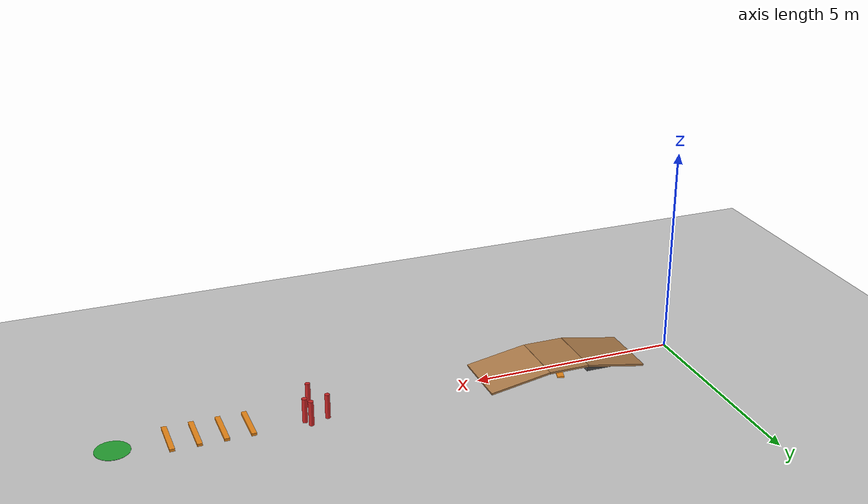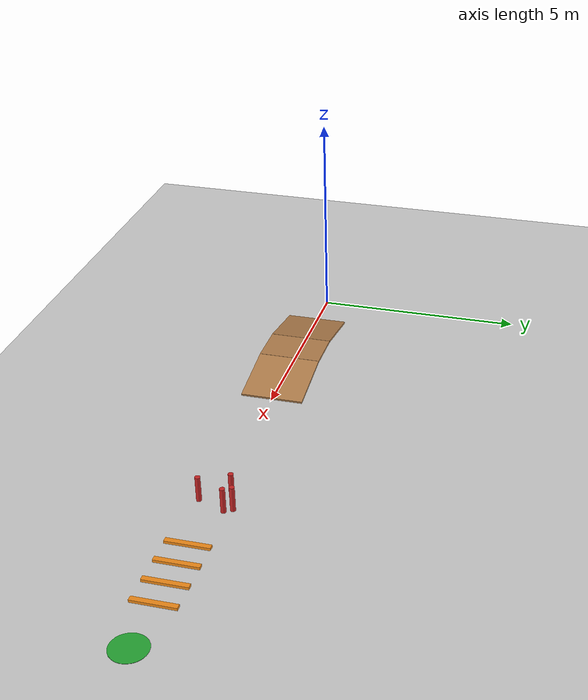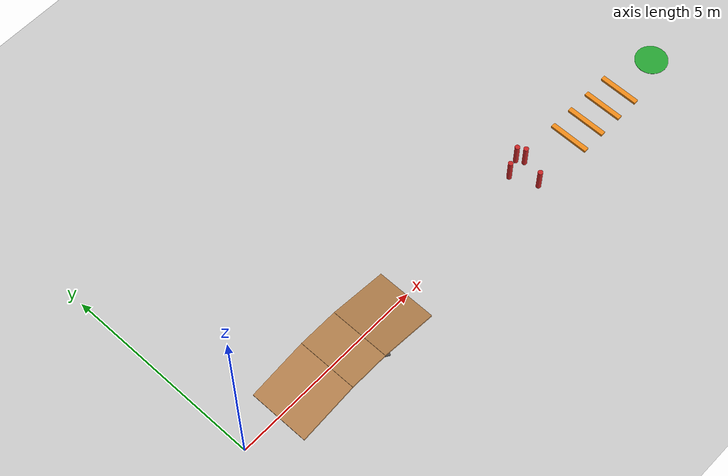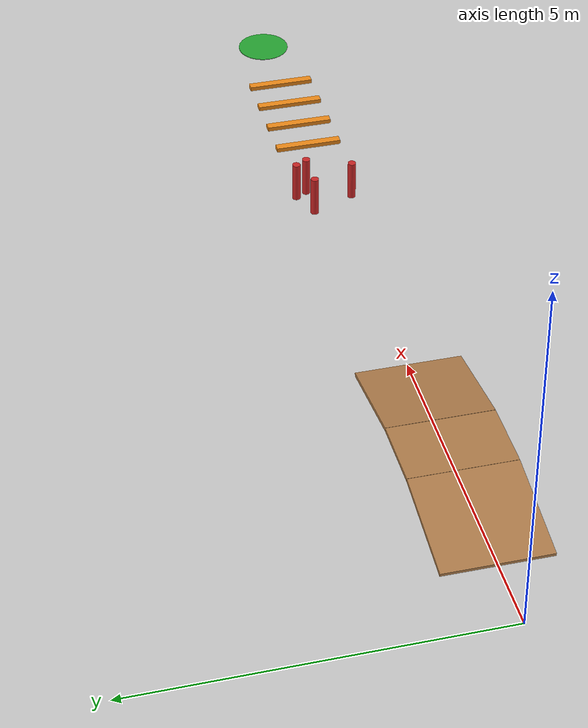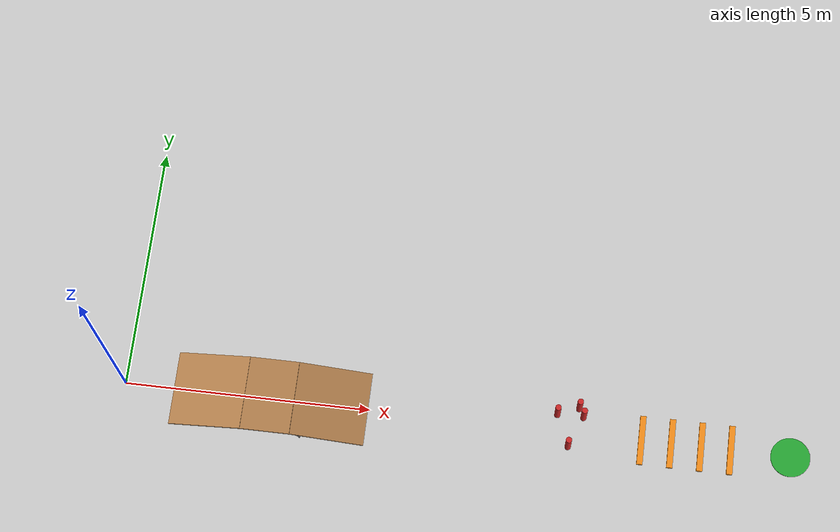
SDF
<?xml version="1.0" ?>
<!-- 由 omni_world.py 自动生成: scene=mixed seed=7 -->
<sdf version="1.5">
  <world name="mixed">
    <physics type="ode">
      <type>world</type>
      <max_step_size>0.001</max_step_size>
      <real_time_update_rate>1000</real_time_update_rate>
      <iters>500</iters>
    </physics>
    <include><uri>model://sun</uri></include>
    <include><uri>model://ground_plane</uri></include>
    <model name="mx_step_0_0">
      <static>true</static>
      <pose>1.500 0.000 0.033 0.0000 0.0000 0.0000</pose>
      <link name="link">
        <collision name="collision">
          <geometry><box><size>0.350 1.000 0.065</size></box></geometry>
          <surface><friction><ode><mu>1.0</mu><mu2>1.0</mu2></ode></friction></surface>
        </collision>
        <visual name="visual">
          <geometry><box><size>0.350 1.000 0.065</size></box></geometry>
          <material><script><uri>file://media/materials/scripts/gazebo.material</uri>
            <name>Gazebo/DarkGrey</name></script></material>
        </visual>
      </link>
    </model>
    <model name="mx_step_0_1">
      <static>true</static>
      <pose>1.850 0.000 0.065 0.0000 0.0000 0.0000</pose>
      <link name="link">
        <collision name="collision">
          <geometry><box><size>0.350 1.000 0.130</size></box></geometry>
          <surface><friction><ode><mu>1.0</mu><mu2>1.0</mu2></ode></friction></surface>
        </collision>
        <visual name="visual">
          <geometry><box><size>0.350 1.000 0.130</size></box></geometry>
          <material><script><uri>file://media/materials/scripts/gazebo.material</uri>
            <name>Gazebo/DarkGrey</name></script></material>
        </visual>
      </link>
    </model>
    <model name="mx_step_0_2">
      <static>true</static>
      <pose>2.200 0.000 0.098 0.0000 0.0000 0.0000</pose>
      <link name="link">
        <collision name="collision">
          <geometry><box><size>0.350 1.000 0.195</size></box></geometry>
          <surface><friction><ode><mu>1.0</mu><mu2>1.0</mu2></ode></friction></surface>
        </collision>
        <visual name="visual">
          <geometry><box><size>0.350 1.000 0.195</size></box></geometry>
          <material><script><uri>file://media/materials/scripts/gazebo.material</uri>
            <name>Gazebo/DarkGrey</name></script></material>
        </visual>
      </link>
    </model>
    <model name="mx_rough_1_0">
      <static>true</static>
      <pose>3.072 0.450 0.017 0.0000 0.0000 2.8579</pose>
      <link name="link">
        <collision name="collision">
          <geometry><box><size>0.164 0.237 0.034</size></box></geometry>
          <surface><friction><ode><mu>1.0</mu><mu2>1.0</mu2></ode></friction></surface>
        </collision>
        <visual name="visual">
          <geometry><box><size>0.164 0.237 0.034</size></box></geometry>
          <material><script><uri>file://media/materials/scripts/gazebo.material</uri>
            <name>Gazebo/Orange</name></script></material>
        </visual>
      </link>
    </model>
    <model name="mx_rough_1_1">
      <static>true</static>
      <pose>3.650 -0.602 0.011 0.0000 0.0000 2.5976</pose>
      <link name="link">
        <collision name="collision">
          <geometry><box><size>0.164 0.214 0.021</size></box></geometry>
          <surface><friction><ode><mu>1.0</mu><mu2>1.0</mu2></ode></friction></surface>
        </collision>
        <visual name="visual">
          <geometry><box><size>0.164 0.214 0.021</size></box></geometry>
          <material><script><uri>file://media/materials/scripts/gazebo.material</uri>
            <name>Gazebo/DarkGrey</name></script></material>
        </visual>
      </link>
    </model>
    <model name="mx_rough_1_2">
      <static>true</static>
      <pose>3.946 0.116 0.027 0.0000 0.0000 0.1558</pose>
      <link name="link">
        <collision name="collision">
          <geometry><box><size>0.159 0.238 0.053</size></box></geometry>
          <surface><friction><ode><mu>1.0</mu><mu2>1.0</mu2></ode></friction></surface>
        </collision>
        <visual name="visual">
          <geometry><box><size>0.159 0.238 0.053</size></box></geometry>
          <material><script><uri>file://media/materials/scripts/gazebo.material</uri>
            <name>Gazebo/Orange</name></script></material>
        </visual>
      </link>
    </model>
    <model name="mx_rough_1_3">
      <static>true</static>
      <pose>4.288 -0.295 0.011 0.0000 0.0000 0.9691</pose>
      <link name="link">
        <collision name="collision">
          <geometry><box><size>0.172 0.168 0.022</size></box></geometry>
          <surface><friction><ode><mu>1.0</mu><mu2>1.0</mu2></ode></friction></surface>
        </collision>
        <visual name="visual">
          <geometry><box><size>0.172 0.168 0.022</size></box></geometry>
          <material><script><uri>file://media/materials/scripts/gazebo.material</uri>
            <name>Gazebo/Brown</name></script></material>
        </visual>
      </link>
    </model>
    <model name="mx_rough_1_4">
      <static>true</static>
      <pose>3.857 -0.437 0.012 0.0000 0.0000 1.7730</pose>
      <link name="link">
        <collision name="collision">
          <geometry><box><size>0.165 0.257 0.024</size></box></geometry>
          <surface><friction><ode><mu>1.0</mu><mu2>1.0</mu2></ode></friction></surface>
        </collision>
        <visual name="visual">
          <geometry><box><size>0.165 0.257 0.024</size></box></geometry>
          <material><script><uri>file://media/materials/scripts/gazebo.material</uri>
            <name>Gazebo/Orange</name></script></material>
        </visual>
      </link>
    </model>
    <model name="ramp_up">
      <static>true</static>
      <pose>1.739 0.000 0.155 0.0000 -0.1745 0.0000</pose>
      <link name="link">
        <collision name="collision">
          <geometry><box><size>1.500 1.500 0.050</size></box></geometry>
          <surface><friction><ode><mu>1.2</mu><mu2>1.2</mu2></ode></friction></surface>
        </collision>
        <visual name="visual">
          <geometry><box><size>1.500 1.500 0.050</size></box></geometry>
          <material><script><uri>file://media/materials/scripts/gazebo.material</uri>
            <name>Gazebo/Wood</name></script></material>
        </visual>
      </link>
    </model>
    <model name="platform">
      <static>true</static>
      <pose>2.977 0.000 0.285 0.0000 0.0000 0.0000</pose>
      <link name="link">
        <collision name="collision">
          <geometry><box><size>1.000 1.500 0.050</size></box></geometry>
          <surface><friction><ode><mu>1.2</mu><mu2>1.2</mu2></ode></friction></surface>
        </collision>
        <visual name="visual">
          <geometry><box><size>1.000 1.500 0.050</size></box></geometry>
          <material><script><uri>file://media/materials/scripts/gazebo.material</uri>
            <name>Gazebo/Wood</name></script></material>
        </visual>
      </link>
    </model>
    <model name="ramp_down">
      <static>true</static>
      <pose>4.216 0.000 0.155 0.0000 0.1745 0.0000</pose>
      <link name="link">
        <collision name="collision">
          <geometry><box><size>1.500 1.500 0.050</size></box></geometry>
          <surface><friction><ode><mu>1.2</mu><mu2>1.2</mu2></ode></friction></surface>
        </collision>
        <visual name="visual">
          <geometry><box><size>1.500 1.500 0.050</size></box></geometry>
          <material><script><uri>file://media/materials/scripts/gazebo.material</uri>
            <name>Gazebo/Wood</name></script></material>
        </visual>
      </link>
    </model>
    <model name="mx_pole_3_0">
      <static>true</static>
      <pose>9.298 0.333 0.300 0 0 0</pose>
      <link name="link">
        <collision name="collision">
          <geometry><cylinder><radius>0.060</radius><length>0.600</length></cylinder></geometry>
          <surface><friction><ode><mu>1.0</mu><mu2>1.0</mu2></ode></friction></surface>
        </collision>
        <visual name="visual">
          <geometry><cylinder><radius>0.060</radius><length>0.600</length></cylinder></geometry>
          <material><script><uri>file://media/materials/scripts/gazebo.material</uri>
            <name>Gazebo/Red</name></script></material>
        </visual>
      </link>
    </model>
    <model name="mx_pole_3_1">
      <static>true</static>
      <pose>9.198 0.508 0.300 0 0 0</pose>
      <link name="link">
        <collision name="collision">
          <geometry><cylinder><radius>0.060</radius><length>0.600</length></cylinder></geometry>
          <surface><friction><ode><mu>1.0</mu><mu2>1.0</mu2></ode></friction></surface>
        </collision>
        <visual name="visual">
          <geometry><cylinder><radius>0.060</radius><length>0.600</length></cylinder></geometry>
          <material><script><uri>file://media/materials/scripts/gazebo.material</uri>
            <name>Gazebo/Red</name></script></material>
        </visual>
      </link>
    </model>
    <model name="mx_pole_3_2">
      <static>true</static>
      <pose>9.042 -0.302 0.300 0 0 0</pose>
      <link name="link">
        <collision name="collision">
          <geometry><cylinder><radius>0.060</radius><length>0.600</length></cylinder></geometry>
          <surface><friction><ode><mu>1.0</mu><mu2>1.0</mu2></ode></friction></surface>
        </collision>
        <visual name="visual">
          <geometry><cylinder><radius>0.060</radius><length>0.600</length></cylinder></geometry>
          <material><script><uri>file://media/materials/scripts/gazebo.material</uri>
            <name>Gazebo/Red</name></script></material>
        </visual>
      </link>
    </model>
    <model name="mx_pole_3_3">
      <static>true</static>
      <pose>8.770 0.336 0.300 0 0 0</pose>
      <link name="link">
        <collision name="collision">
          <geometry><cylinder><radius>0.060</radius><length>0.600</length></cylinder></geometry>
          <surface><friction><ode><mu>1.0</mu><mu2>1.0</mu2></ode></friction></surface>
        </collision>
        <visual name="visual">
          <geometry><cylinder><radius>0.060</radius><length>0.600</length></cylinder></geometry>
          <material><script><uri>file://media/materials/scripts/gazebo.material</uri>
            <name>Gazebo/Red</name></script></material>
        </visual>
      </link>
    </model>
    <model name="mx_bump_4_0">
      <static>true</static>
      <pose>10.500 0.000 0.033 0.0000 0.0000 0.0000</pose>
      <link name="link">
        <collision name="collision">
          <geometry><box><size>0.120 1.000 0.065</size></box></geometry>
          <surface><friction><ode><mu>1.0</mu><mu2>1.0</mu2></ode></friction></surface>
        </collision>
        <visual name="visual">
          <geometry><box><size>0.120 1.000 0.065</size></box></geometry>
          <material><script><uri>file://media/materials/scripts/gazebo.material</uri>
            <name>Gazebo/Orange</name></script></material>
        </visual>
      </link>
    </model>
    <model name="mx_bump_4_1">
      <static>true</static>
      <pose>11.100 0.000 0.033 0.0000 0.0000 0.0000</pose>
      <link name="link">
        <collision name="collision">
          <geometry><box><size>0.120 1.000 0.065</size></box></geometry>
          <surface><friction><ode><mu>1.0</mu><mu2>1.0</mu2></ode></friction></surface>
        </collision>
        <visual name="visual">
          <geometry><box><size>0.120 1.000 0.065</size></box></geometry>
          <material><script><uri>file://media/materials/scripts/gazebo.material</uri>
            <name>Gazebo/Orange</name></script></material>
        </visual>
      </link>
    </model>
    <model name="mx_bump_4_2">
      <static>true</static>
      <pose>11.700 0.000 0.033 0.0000 0.0000 0.0000</pose>
      <link name="link">
        <collision name="collision">
          <geometry><box><size>0.120 1.000 0.065</size></box></geometry>
          <surface><friction><ode><mu>1.0</mu><mu2>1.0</mu2></ode></friction></surface>
        </collision>
        <visual name="visual">
          <geometry><box><size>0.120 1.000 0.065</size></box></geometry>
          <material><script><uri>file://media/materials/scripts/gazebo.material</uri>
            <name>Gazebo/Orange</name></script></material>
        </visual>
      </link>
    </model>
    <model name="mx_bump_4_3">
      <static>true</static>
      <pose>12.300 0.000 0.033 0.0000 0.0000 0.0000</pose>
      <link name="link">
        <collision name="collision">
          <geometry><box><size>0.120 1.000 0.065</size></box></geometry>
          <surface><friction><ode><mu>1.0</mu><mu2>1.0</mu2></ode></friction></surface>
        </collision>
        <visual name="visual">
          <geometry><box><size>0.120 1.000 0.065</size></box></geometry>
          <material><script><uri>file://media/materials/scripts/gazebo.material</uri>
            <name>Gazebo/Orange</name></script></material>
        </visual>
      </link>
    </model>
    <model name="goal">
      <static>true</static>
      <pose>13.500 0.000 0.005 0 0 0</pose>
      <link name="link">
        <visual name="visual">
          <geometry><cylinder><radius>0.400</radius><length>0.01</length></cylinder></geometry>
          <material><script><uri>file://media/materials/scripts/gazebo.material</uri>
            <name>Gazebo/Green</name></script></material>
        </visual>
      </link>
    </model>

  </world>
</sdf>
